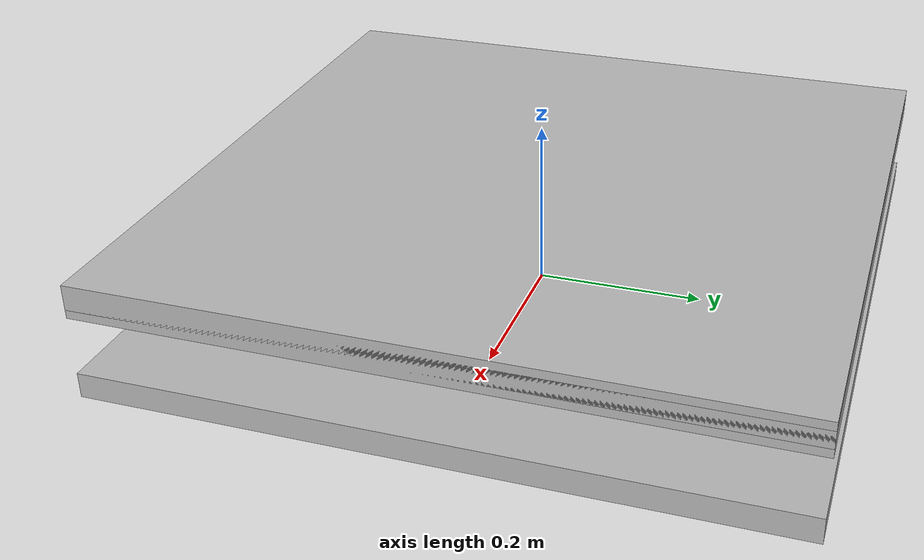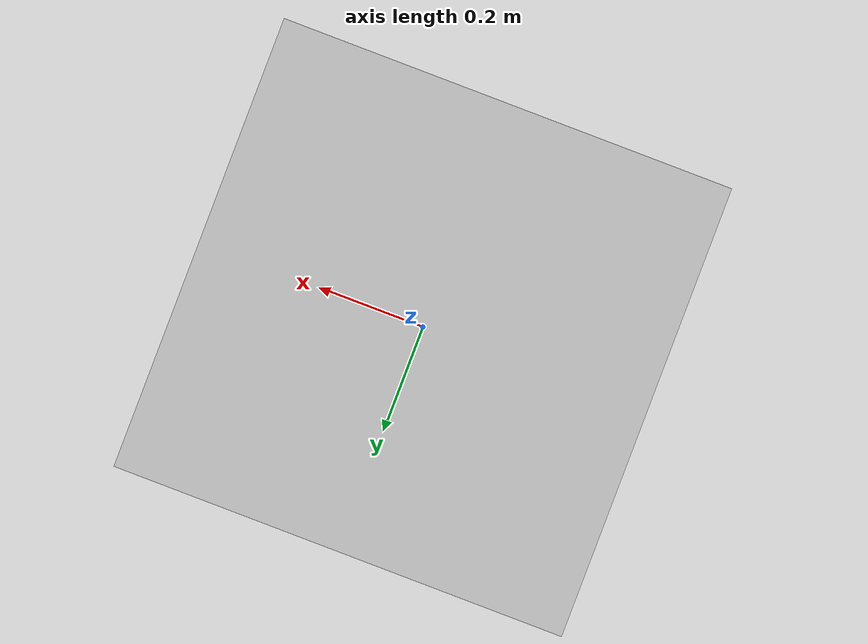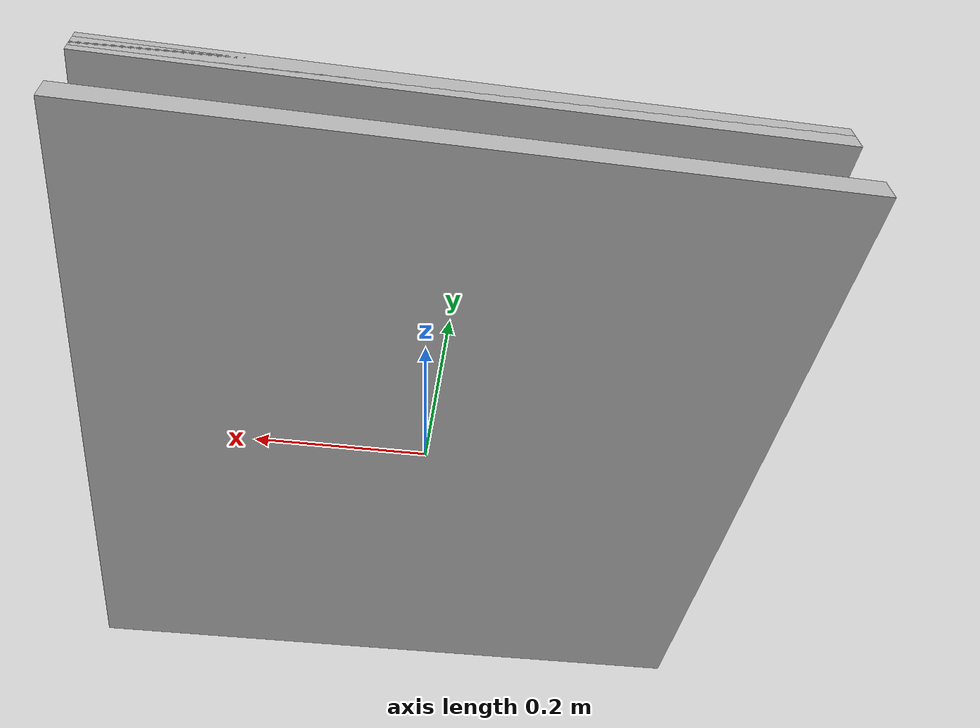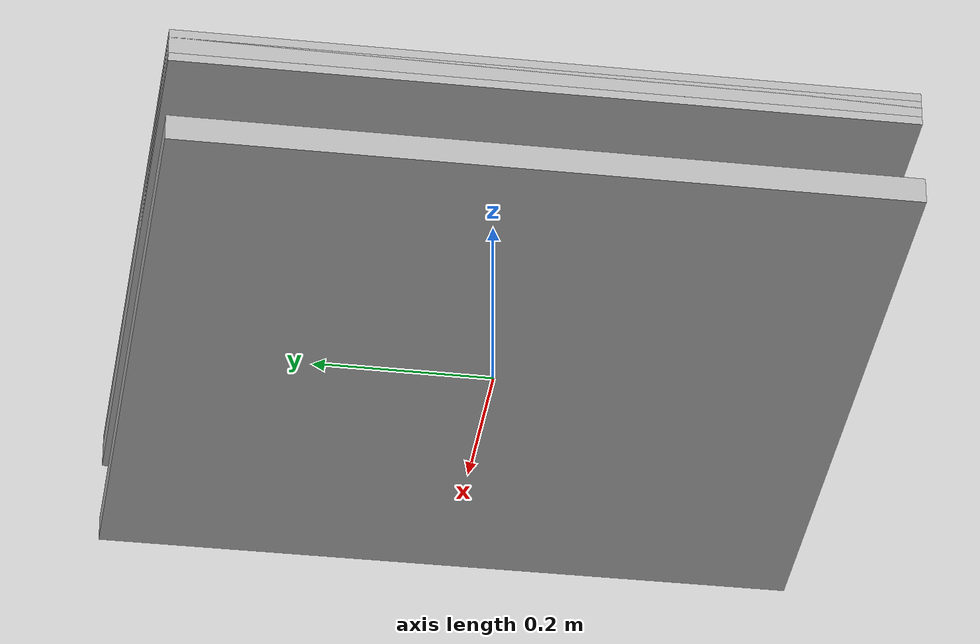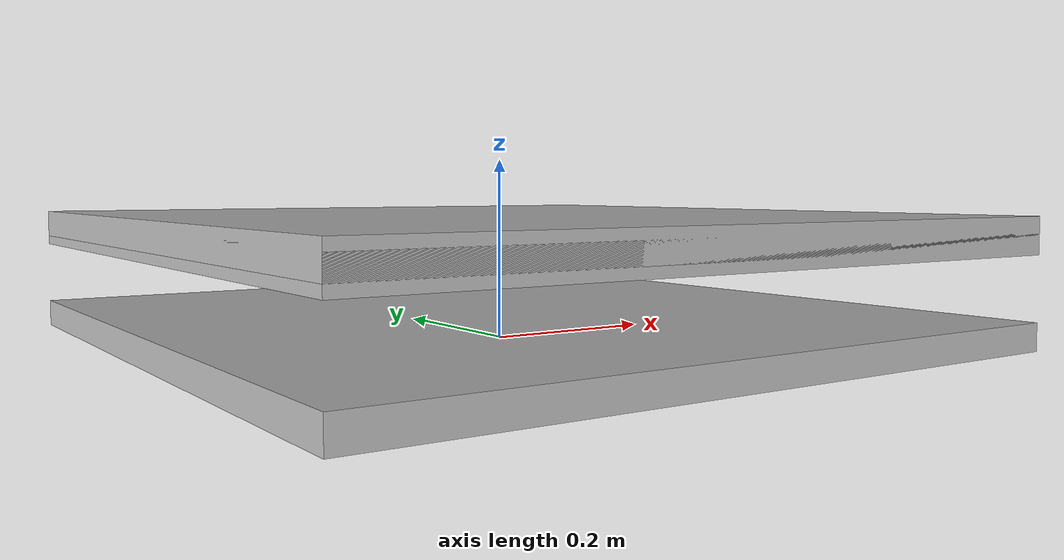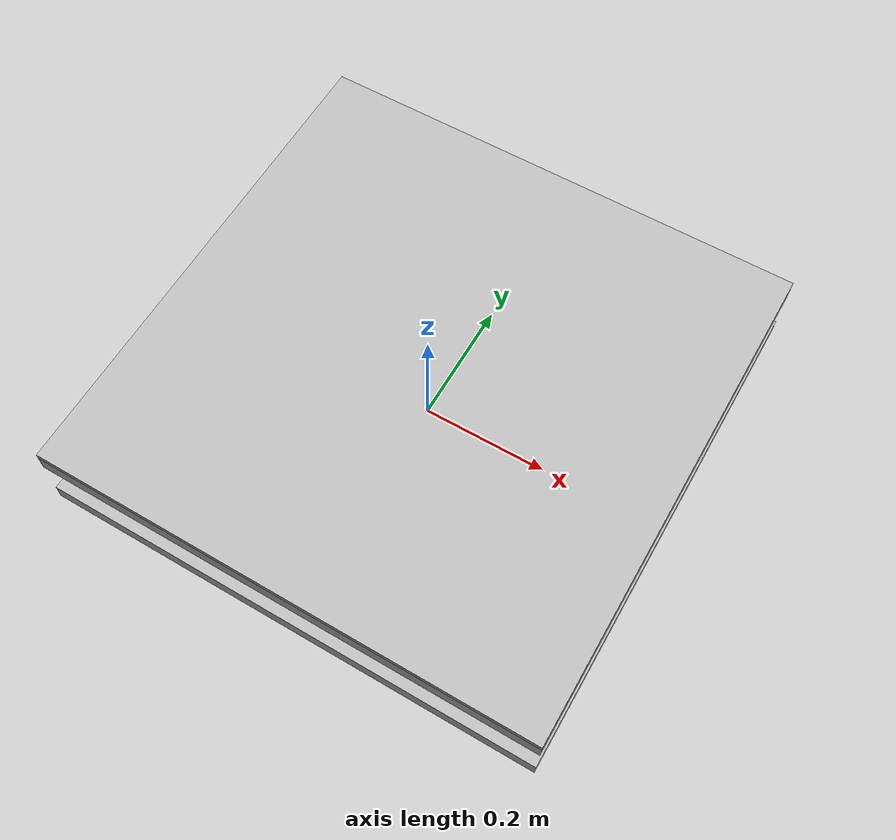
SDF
<sdf version='1.7'>
  <model name='new_wheelchair'>
    <link name='base_link'>
      <inertial>
        <pose>0 0 0 0 -0 0</pose>
        <mass>0.1</mass>
        <inertia>
          <ixx>0.0001</ixx>
          <ixy>0</ixy>
          <ixz>0</ixz>
          <iyy>0.0001</iyy>
          <iyz>0</iyz>
          <izz>0.0001</izz>
        </inertia>
      </inertial>
      <collision name='base_link_collision'>
        <pose>0 0 0.015 0 -0 0</pose>
        <geometry>
          <box>
            <size>0.8 0.8 0.03</size>
          </box>
        </geometry>
      </collision>
      <visual name='base_link_visual'>
        <pose>0 0 0.015 0 -0 0</pose>
        <geometry>
          <box>
            <size>0.8 0.8 0.03</size>
          </box>
        </geometry>
      </visual>
    </link>
    <joint name='footprint_joint' type='fixed'>
      <pose relative_to='base_link'>0 0 0.1 0 -0 0</pose>
      <parent>base_link</parent>
      <child>base_footprint</child>
      <axis>
        <dynamics>
          <spring_reference>0</spring_reference>
          <spring_stiffness>0</spring_stiffness>
        </dynamics>
        <xyz>0 0 1</xyz>
        <limit>
          <lower>-1e+16</lower>
          <upper>1e+16</upper>
        </limit>
      </axis>
      <physics>
        <ode>
          <limit>
            <cfm>0</cfm>
            <erp>0.2</erp>
          </limit>
        </ode>
      </physics>
    </joint>
    <link name='base_footprint'>
      <pose relative_to='footprint_joint'>0 0 0 0 -0 0</pose>
      <inertial>
        <pose>0 0 0 0 -0 0</pose>
        <mass>0.1</mass>
        <inertia>
          <ixx>0.0001</ixx>
          <ixy>0</ixy>
          <ixz>0</ixz>
          <iyy>0.0001</iyy>
          <iyz>0</iyz>
          <izz>0.0001</izz>
        </inertia>
      </inertial>
      <collision name='base_footprint_collision'>
        <pose>0 0 0.015 0 -0 0</pose>
        <geometry>
          <box>
            <size>0.8 0.8 0.03</size>
          </box>
        </geometry>
      </collision>
      <visual name='base_footprint_visual'>
        <pose>0 0 0.015 0 -0 0</pose>
        <geometry>
          <box>
            <size>0.8 0.8 0.03</size>
          </box>
        </geometry>
      </visual>
    </link>
    <joint name='base_footprint_to_chassis_link' type='revolute'>
      <pose relative_to='base_footprint'>0 0 0.01 0 -0 0</pose>
      <parent>base_footprint</parent>
      <child>chassis_link</child>
      <axis>
        <xyz>1 0 0</xyz>
        <limit>
          <lower>-1e+16</lower>
          <upper>1e+16</upper>
        </limit>
        <dynamics>
          <spring_reference>0</spring_reference>
          <spring_stiffness>0</spring_stiffness>
        </dynamics>
      </axis>
    </joint>
    <link name='chassis_link'>
      <pose relative_to='base_footprint_to_chassis_link'>0 0 0 0 -0 0</pose>
      <inertial>
        <pose>0 0 0.015 0 -0 0</pose>
        <mass>20</mass>
        <inertia>
          <ixx>1.06817</ixx>
          <ixy>0</ixy>
          <ixz>0</ixz>
          <iyy>1.06817</iyy>
          <iyz>0</iyz>
          <izz>2.13333</izz>
        </inertia>
      </inertial>
      <collision name='chassis_link_collision'>
        <pose>0 0 0.015 0 -0 0</pose>
        <geometry>
          <box>
            <size>0.8 0.8 0.03</size>
          </box>
        </geometry>
      </collision>
      <visual name='chassis_link_visual'>
        <pose>0 0 0.015 0 -0 0</pose>
        <geometry>
          <box>
            <size>0.8 0.8 0.03</size>
          </box>
        </geometry>
      </visual>
    </link>
  </model>
</sdf>
